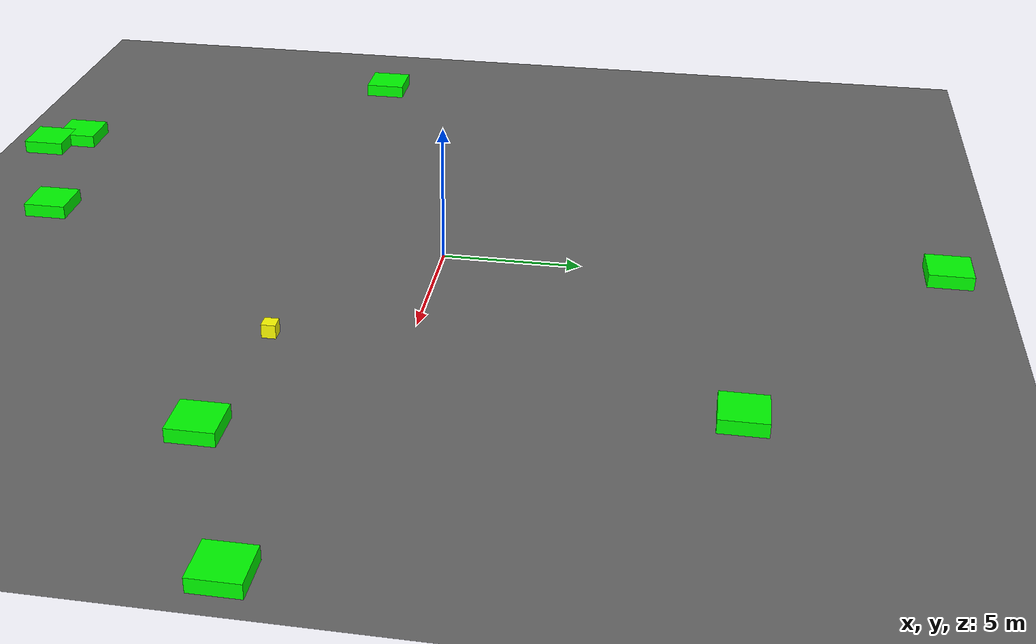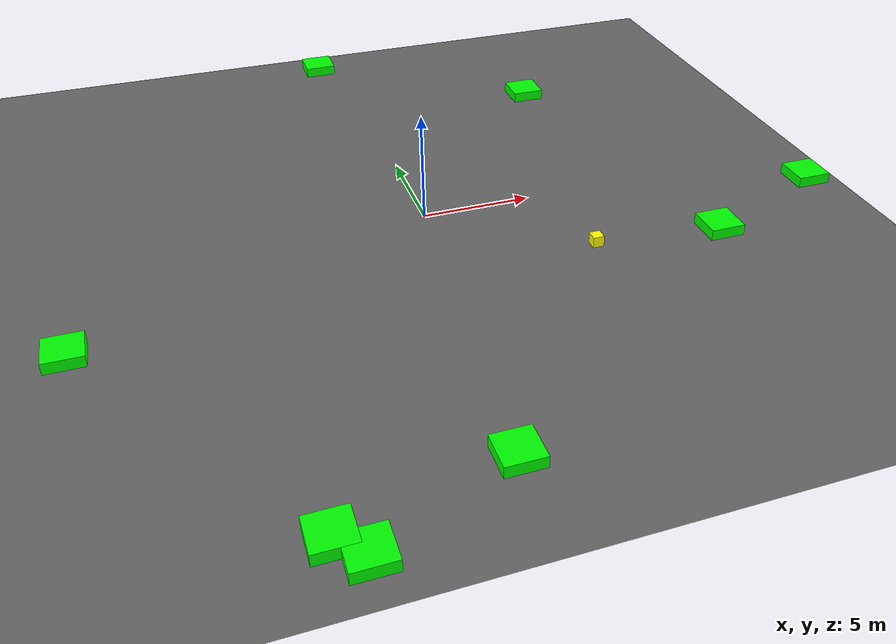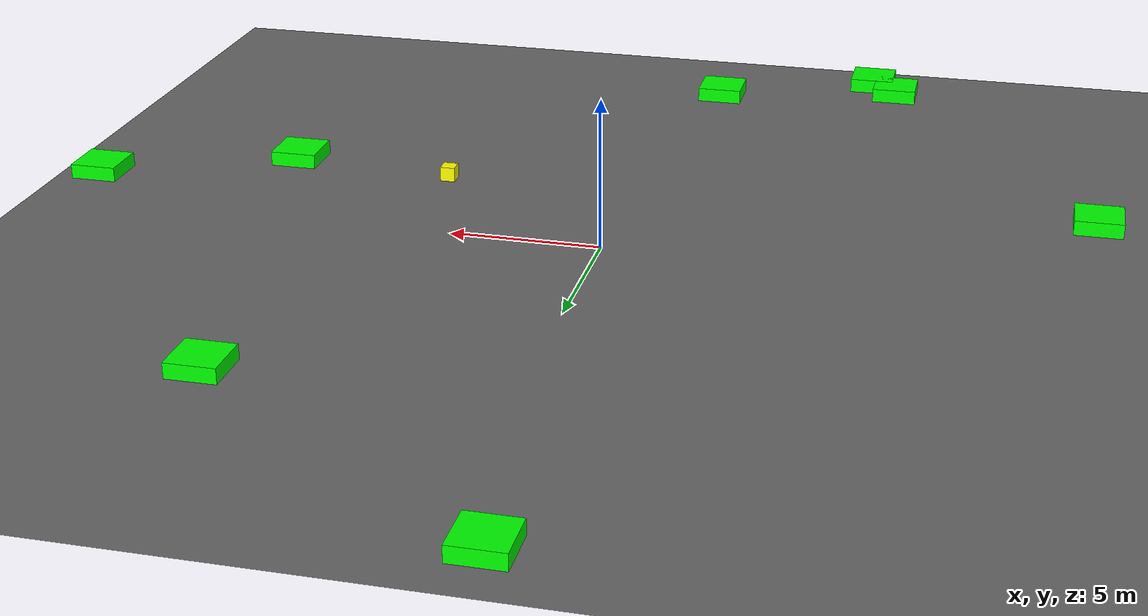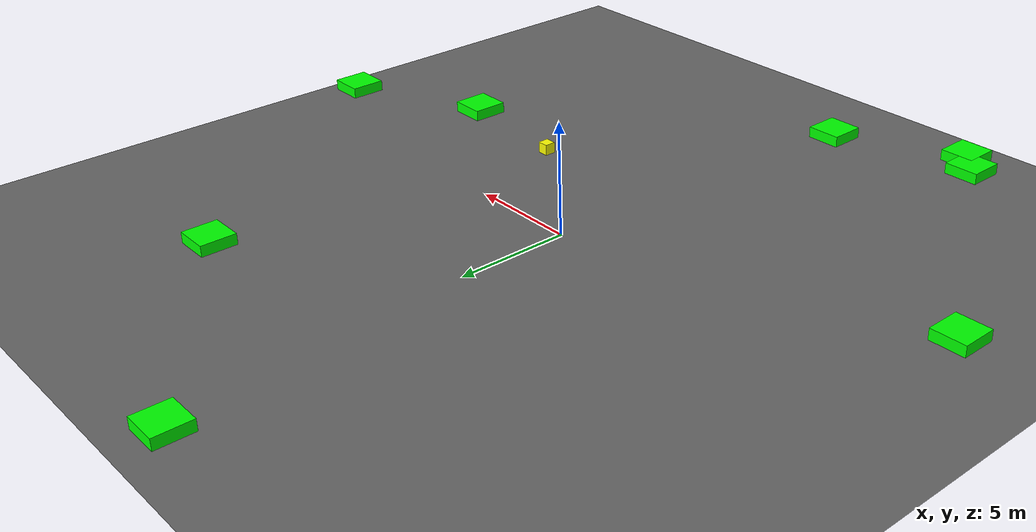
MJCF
<mujoco model="baseline_lvl4_obs8_seed3007">
    <compiler angle="degree" coordinate="local" inertiafromgeom="true"/>
    <option integrator="RK4" timestep="0.01"/>

    <asset>
        <texture builtin="gradient" height="100" rgb1="0.6 0.8 1" rgb2="0 0 0" type="skybox" width="100"/>
        <texture name="floor_texture" type="2d" builtin="checker" width="100" height="100" rgb1="0 0 0" rgb2="0.8 0.8 0.8"/>
        <material name="MatPlane" reflectance="0.5" shininess="1" specular="1" texrepeat="10 10" texture="floor_texture"/>
    </asset>

    <!-- Excluding the contact between the agent and the goal, and the agent and the floor -->
    <contact>
        <exclude body1="agent" body2="goal"/>
        <exclude body1 = "agent" body2 = "floor"/>
    </contact>

    <extension>
        <plugin plugin = "mujoco.pid">
            <instance name = "pid1">
                <config key="kp" value="2"/>
                <config key="ki" value="0"/>
                <config key="kd" value="55"/>
            </instance>
        </plugin>
    </extension>

    <worldbody>
        <light cutoff="100" diffuse="1 1 1" dir="-0 0 -1.3" directional="true" exponent="1" pos="0 0 1.3" specular=".1 .1 .1"/>
        <body name="floor" pos="0 0 0">
            <geom name="floor_geom" type="plane" size="20 20 0.1" material="MatPlane"/>
        </body>

        <!-- Goal -->
        <body name="goal" pos="12.000 12.000 0">
            <geom name="goal_geom" type="plane" size="0.5 0.5 1" pos="0 0 0" rgba="1 0 0 1"/>
        </body>

        <!-- Agent -->
        <body name="agent" pos="6.470 -4.681 0.25">
            <joint name="j1" type="slide" axis ="1 0 0 "/>
            <joint name="j2" type="slide" axis ="0 1 0 "/>
            <geom name="agent_geom" type="box" size="0.25 0.25 0.250" rgba="1 1 0 1"/>
        </body>

    <body name="obstacle1" pos="18.515 -2.501 0.250">
      <geom name="obstacle1_geom" type="box"
            size="0.800 0.800 0.250"
            rgba="0 1 0 1"/>
    </body>
    <body name="obstacle2" pos="12.197 -5.289 0.250">
      <geom name="obstacle2_geom" type="box"
            size="0.800 0.800 0.250"
            rgba="0 1 0 1"/>
    </body>
    <body name="obstacle3" pos="-1.295 -15.658 0.250">
      <geom name="obstacle3_geom" type="box"
            size="0.800 0.800 0.250"
            rgba="0 1 0 1"/>
    </body>
    <body name="obstacle4" pos="-6.916 -18.127 0.250">
      <geom name="obstacle4_geom" type="box"
            size="0.800 0.800 0.250"
            rgba="0 1 0 1"/>
    </body>
    <body name="obstacle5" pos="-15.525 -5.387 0.250">
      <geom name="obstacle5_geom" type="box"
            size="0.800 0.800 0.250"
            rgba="0 1 0 1"/>
    </body>
    <body name="obstacle6" pos="-1.349 18.015 0.250">
      <geom name="obstacle6_geom" type="box"
            size="0.800 0.800 0.250"
            rgba="0 1 0 1"/>
    </body>
    <body name="obstacle7" pos="8.959 10.879 0.250">
      <geom name="obstacle7_geom" type="box"
            size="0.800 0.800 0.250"
            rgba="0 1 0 1"/>
    </body>
    <body name="obstacle8" pos="-7.866 -17.108 0.250">
      <geom name="obstacle8_geom" type="box"
            size="0.800 0.800 0.250"
            rgba="0 1 0 1"/>
    </body>
    </worldbody>

    <actuator>
        <plugin joint="j1" plugin="mujoco.pid" instance="pid1" />
        <plugin joint="j2" plugin="mujoco.pid" instance="pid1"/>
    </actuator>

  <sensor>
    <distance name="dist1" geom1="agent_geom" geom2="obstacle1_geom" cutoff="1.5"/>
    <distance name="dist2" geom1="agent_geom" geom2="obstacle2_geom" cutoff="1.5"/>
    <distance name="dist3" geom1="agent_geom" geom2="obstacle3_geom" cutoff="1.5"/>
    <distance name="dist4" geom1="agent_geom" geom2="obstacle4_geom" cutoff="1.5"/>
    <distance name="dist5" geom1="agent_geom" geom2="obstacle5_geom" cutoff="1.5"/>
    <distance name="dist6" geom1="agent_geom" geom2="obstacle6_geom" cutoff="1.5"/>
    <distance name="dist7" geom1="agent_geom" geom2="obstacle7_geom" cutoff="1.5"/>
    <distance name="dist8" geom1="agent_geom" geom2="obstacle8_geom" cutoff="1.5"/>
  </sensor>
</mujoco>
